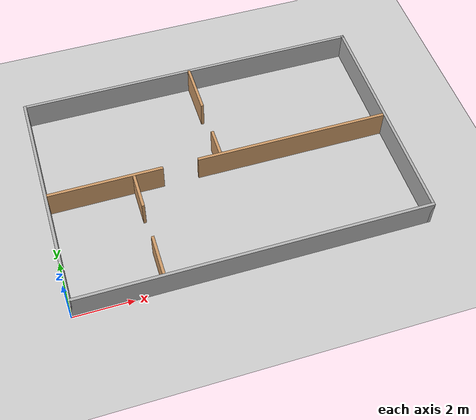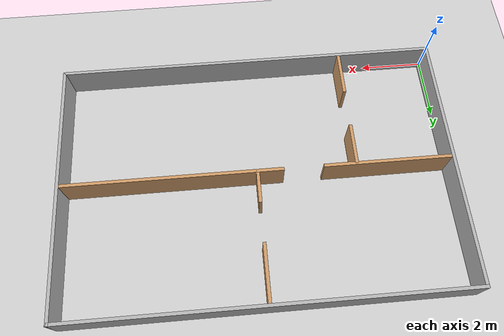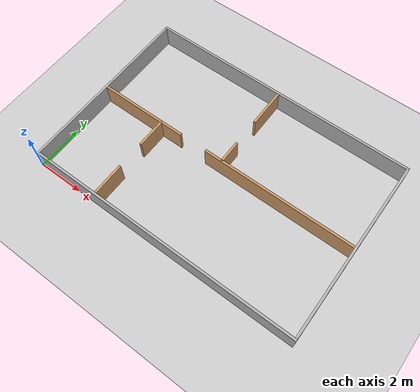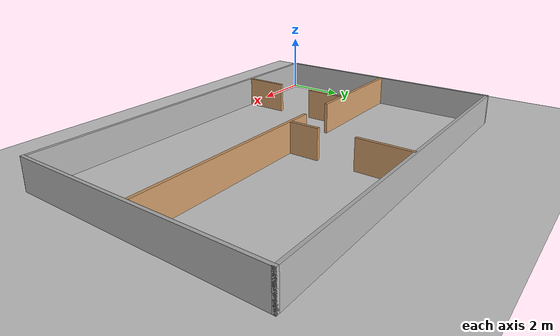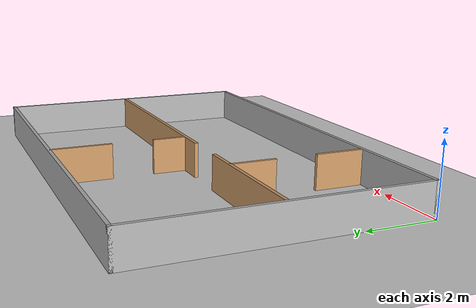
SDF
<?xml version="1.0" ?>
<sdf version="1.7">
  <world name="house">
    <gravity>0 0 -9.8</gravity>
    <include><uri>model://ground_plane</uri></include>
    <include><uri>model://sun</uri></include>

    <!-- Outer boundary walls (12 m x 8 m) -->
    <model name="box_0"><static>true</static><pose>6.000 0.050 0.500 0 0 0</pose><link name="link"><collision name="collision"><geometry><box><size>12.000 0.100 1.000</size></box></geometry></collision><visual name="visual"><geometry><box><size>12.000 0.100 1.000</size></box></geometry><material><ambient>0.7 0.7 0.7 1</ambient><diffuse>0.7 0.7 0.7 1</diffuse></material></visual></link></model>
    <model name="box_1"><static>true</static><pose>6.000 7.950 0.500 0 0 0</pose><link name="link"><collision name="collision"><geometry><box><size>12.000 0.100 1.000</size></box></geometry></collision><visual name="visual"><geometry><box><size>12.000 0.100 1.000</size></box></geometry><material><ambient>0.7 0.7 0.7 1</ambient><diffuse>0.7 0.7 0.7 1</diffuse></material></visual></link></model>
    <model name="box_2"><static>true</static><pose>0.050 4.000 0.500 0 0 0</pose><link name="link"><collision name="collision"><geometry><box><size>0.100 8.000 1.000</size></box></geometry></collision><visual name="visual"><geometry><box><size>0.100 8.000 1.000</size></box></geometry><material><ambient>0.7 0.7 0.7 1</ambient><diffuse>0.7 0.7 0.7 1</diffuse></material></visual></link></model>
    <model name="box_3"><static>true</static><pose>11.950 4.000 0.500 0 0 0</pose><link name="link"><collision name="collision"><geometry><box><size>0.100 8.000 1.000</size></box></geometry></collision><visual name="visual"><geometry><box><size>0.100 8.000 1.000</size></box></geometry><material><ambient>0.7 0.7 0.7 1</ambient><diffuse>0.7 0.7 0.7 1</diffuse></material></visual></link></model>

    <!-- Horizontal interior wall at y=4, door gap at x=[4.0, 5.2] -->
    <!-- Left segment: x=[0.1, 4.0] -->
    <model name="box_4"><static>true</static><pose>2.050 4.000 0.500 0 0 0</pose><link name="link"><collision name="collision"><geometry><box><size>3.900 0.100 1.000</size></box></geometry></collision><visual name="visual"><geometry><box><size>3.900 0.100 1.000</size></box></geometry><material><ambient>0.8 0.6 0.4 1</ambient><diffuse>0.8 0.6 0.4 1</diffuse></material></visual></link></model>
    <!-- Right segment: x=[5.2, 11.9] -->
    <model name="box_5"><static>true</static><pose>8.550 4.000 0.500 0 0 0</pose><link name="link"><collision name="collision"><geometry><box><size>6.700 0.100 1.000</size></box></geometry></collision><visual name="visual"><geometry><box><size>6.700 0.100 1.000</size></box></geometry><material><ambient>0.8 0.6 0.4 1</ambient><diffuse>0.8 0.6 0.4 1</diffuse></material></visual></link></model>

    <!-- Vertical interior wall at x=3, y=[0.1, 4.0], door gap at y=[1.5, 2.7] -->
    <!-- Bottom segment: y=[0.1, 1.5] -->
    <model name="box_6"><static>true</static><pose>3.000 0.800 0.500 0 0 0</pose><link name="link"><collision name="collision"><geometry><box><size>0.100 1.400 1.000</size></box></geometry></collision><visual name="visual"><geometry><box><size>0.100 1.400 1.000</size></box></geometry><material><ambient>0.8 0.6 0.4 1</ambient><diffuse>0.8 0.6 0.4 1</diffuse></material></visual></link></model>
    <!-- Top segment: y=[2.7, 4.0] -->
    <model name="box_7"><static>true</static><pose>3.000 3.350 0.500 0 0 0</pose><link name="link"><collision name="collision"><geometry><box><size>0.100 1.300 1.000</size></box></geometry></collision><visual name="visual"><geometry><box><size>0.100 1.300 1.000</size></box></geometry><material><ambient>0.8 0.6 0.4 1</ambient><diffuse>0.8 0.6 0.4 1</diffuse></material></visual></link></model>

    <!-- Vertical interior wall at x=6, y=[4.0, 8.0], door gap at y=[5.0, 6.2] -->
    <!-- Bottom segment: y=[4.0, 5.0] -->
    <model name="box_8"><static>true</static><pose>6.000 4.500 0.500 0 0 0</pose><link name="link"><collision name="collision"><geometry><box><size>0.100 1.000 1.000</size></box></geometry></collision><visual name="visual"><geometry><box><size>0.100 1.000 1.000</size></box></geometry><material><ambient>0.8 0.6 0.4 1</ambient><diffuse>0.8 0.6 0.4 1</diffuse></material></visual></link></model>
    <!-- Top segment: y=[6.2, 7.95] -->
    <model name="box_9"><static>true</static><pose>6.000 7.075 0.500 0 0 0</pose><link name="link"><collision name="collision"><geometry><box><size>0.100 1.750 1.000</size></box></geometry></collision><visual name="visual"><geometry><box><size>0.100 1.750 1.000</size></box></geometry><material><ambient>0.8 0.6 0.4 1</ambient><diffuse>0.8 0.6 0.4 1</diffuse></material></visual></link></model>

  </world>
</sdf>
